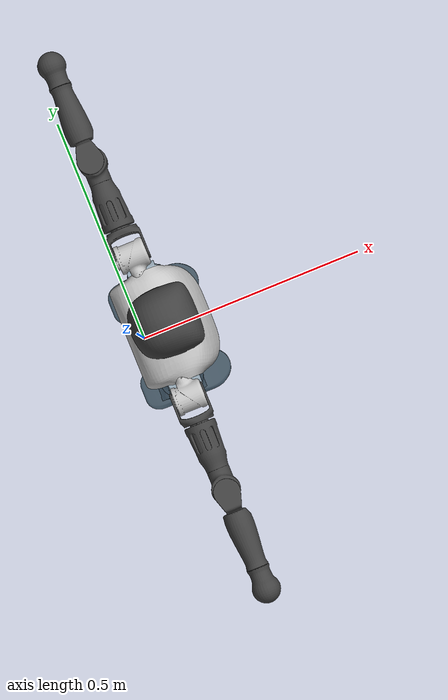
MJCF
<mujoco model="T1">
  <compiler angle="radian" assetdir="assets" balanceinertia="true" inertiafromgeom="false"/>

  <option timestep="0.005" density="1.2" viscosity="2e-05"/>

  <size nkey="1"/>

  <visual>
    <quality shadowsize="8192"/>
    <map shadowclip="0.5"/>
  </visual>

  <default>
    <default class="/">
      <joint armature="0.01" damping="0.01" frictionloss="0.1"/>
      <geom contype="0" conaffinity="0" group="1" solref="-1000 -80"/>
      <site size="0.01 0.005 0.005" group="5"/>
      <general forcelimited="true" biastype="affine" gainprm="25" biasprm="0 -25 -0.6"/>
      <default class="t1">
        <geom rgba="0.25 0.25 0.25 1"/>
        <default class="visual">
          <geom type="mesh" group="2"/>
        </default>
        <default class="collision">
          <geom group="3"/>
        </default>
        <default class="foot">
          <geom size="0.1115 0.05 0.015" type="box" condim="6" group="4" priority="1" solimp="0.015 1 0.015"/>
        </default>
        <default class="reward_collision_sphere">
          <geom group="5" rgba="1 0 0 1"/>
        </default>
      </default>
    </default>
  </default>

  <asset>
    <texture type="skybox" colorspace="auto" name="//unnamed_texture_0" builtin="gradient" rgb1="0.95 0.95 0.95" rgb2="0.95 0.95 0.95" width="100" height="600"/>
    <texture type="2d" colorspace="auto" name="texplane" builtin="checker" rgb1="0.345 0.575 0.748" rgb2="0.345 0.575 0.748" markrgb="1 1 1" width="512" height="512"/>
    <material name="MatPlane" class="/" texture="texplane" texuniform="true" texrepeat="2 2" specular="0.9"/>
    <mesh name="Trunk" class="/" file="Trunk.stl"/>
    <mesh name="H1" class="/" file="H1.stl"/>
    <mesh name="H2" class="/" file="H2.stl"/>
    <mesh name="AL1" class="/" file="AL1.stl"/>
    <mesh name="AL2" class="/" file="AL2.stl"/>
    <mesh name="AL3" class="/" file="AL3.stl"/>
    <mesh name="left_hand_link" class="/" file="left_hand_link.stl"/>
    <mesh name="AR1" class="/" file="AR1.stl"/>
    <mesh name="AR2" class="/" file="AR2.stl"/>
    <mesh name="AR3" class="/" file="AR3.stl"/>
    <mesh name="right_hand_link" class="/" file="right_hand_link.stl"/>
    <mesh name="Waist" class="/" file="Waist.stl"/>
    <mesh name="Hip_Pitch_Left" class="/" file="Hip_Pitch_Left.stl"/>
    <mesh name="Hip_Roll_Left" class="/" file="Hip_Roll_Left.stl"/>
    <mesh name="Hip_Yaw_Left" class="/" file="Hip_Yaw_Left.stl"/>
    <mesh name="Shank_Left" class="/" file="Shank_Left.stl"/>
    <mesh name="Ankle_Cross_Left" class="/" file="Ankle_Cross_Left.stl"/>
    <mesh name="left_foot_link" class="/" file="left_foot_link.stl"/>
    <mesh name="Hip_Pitch_Right" class="/" file="Hip_Pitch_Right.stl"/>
    <mesh name="Hip_Roll_Right" class="/" file="Hip_Roll_Right.stl"/>
    <mesh name="Hip_Yaw_Right" class="/" file="Hip_Yaw_Right.stl"/>
    <mesh name="Shank_Right" class="/" file="Shank_Right.stl"/>
    <mesh name="Ankle_Cross_Right" class="/" file="Ankle_Cross_Right.stl"/>
    <mesh name="right_foot_link" class="/" file="right_foot_link.stl"/>
  </asset>

  <worldbody>
    <geom name="floor" class="/" size="100 100 0.125" type="plane" group="0" material="MatPlane"/>
    <light name="toplight_shadow" class="/" pos="0 0 5" dir="0.0990148 0.0990148 -0.990148" type="directional" ambient="0.04 0.04 0.04" diffuse="0.55 0.55 0.55" specular="0.12 0.12 0.12"/>
    <light name="toplight_fill" class="/" pos="0 0 5" dir="0.0990148 0.0990148 -0.990148" type="directional" castshadow="false" ambient="0.04 0.04 0.04" diffuse="0.3 0.3 0.3" specular="0.08 0.08 0.08"/>
    <body name="trunk" childclass="t1" pos="-0.000368542 0.00265666 -0.00232567" quat="1 -0.000846261 -0.000508121 1.01091e-05">
      <inertial pos="0.0407666 -0.000392418 0.112576" quat="0.999955 0.000412779 -0.00939829 0.00122462" mass="9.87196" diaginertia="0.0208614 0.0881571 0.076838"/>
      <joint name="//unnamed_joint_0" type="free" armature="0" damping="0" frictionloss="0"/>
      <geom name="//unnamed_geom_1" class="visual" rgba="0.76 0.76 0.76 1" mesh="Trunk"/>
      <geom name="//unnamed_geom_2" class="collision" size="0.0714781 0.0953042 0.142956" pos="0.0451105 0 0.129475" type="box"/>
      <geom name="//unnamed_geom_3" class="reward_collision_sphere" size="0.1096" pos="0.0451105 0 0.107895"/>
      <geom name="//unnamed_geom_4" class="reward_collision_sphere" size="0.0142956" pos="0.0451105 0.0874079 0"/>
      <geom name="//unnamed_geom_5" class="reward_collision_sphere" size="0.0142956" pos="0.0451105 -0.0874079 0"/>
      <geom name="//unnamed_geom_6" class="reward_collision_sphere" size="0.0142956" pos="0.0451105 0.110031 0.194212"/>
      <geom name="//unnamed_geom_7" class="reward_collision_sphere" size="0.0142956" pos="0.0451105 -0.110031 0.194212"/>
      <site name="imu" pos="-0.0119456 0.00521439 -0.00268312" size="0.00953042"/>
      <camera name="track" pos="0 -2.05666 0" quat="0.707107 0.707107 0 0" mode="trackcom"/>
      <camera name="ego_camera" pos="0.0917247 0 0.453161" quat="-0.5 -0.5 0.5 0.5"/>
      <body name="H1" pos="0.0484978 -0.000545654 0.263962" quat="0.999999 -7.98446e-05 -0.000730102 0.00109568">
        <inertial pos="0.00137618 0.000212038 0.0619436" quat="0.765566 -0.0110286 0.00226425 0.643259" mass="0.393336" diaginertia="5.91177e-05 0.000263186 0.000209784"/>
        <joint name="AAHead_yaw" pos="0 0 0" axis="-0.00293382 0.00296895 0.999991" stiffness="0.000216254" range="-1.6053 1.56536" armature="0.00908053" damping="0" frictionloss="0.101354"/>
        <geom name="//unnamed_geom_8" class="visual" mesh="H1"/>
        <body name="H2" pos="-0.00143843 -1.40381e-05 0.0687244" quat="0.999999 -0.00106772 -1.19404e-05 -0.000280146">
          <inertial pos="0.00475195 0.000142285 0.105949" quat="0.988419 0.106183 -0.0750303 -0.0782496" mass="0.535535" diaginertia="0.000475047 0.00214902 0.00254227"/>
          <joint name="Head_pitch" pos="0 0 0" axis="-0.0118111 -0.999921 0.00435" range="-1.27939 0.3965" armature="0.0108031" damping="0.0172472" frictionloss="0.105532"/>
          <geom name="//unnamed_geom_9" class="visual" mesh="H2"/>
          <geom name="//unnamed_geom_10" class="collision" size="0.0762433" pos="0.00751842 0 0.118685"/>
          <geom name="//unnamed_geom_11" class="reward_collision_sphere" size="0.0857737" pos="0.0150368 0 0.107895"/>
        </body>
      </body>
      <body name="AL1" pos="0.0461445 0.11228 0.239052" quat="1 -4.21723e-05 0.000514135 0.000634549">
        <inertial pos="-0.00264727 0.0443855 -0.0022354" quat="0.498294 0.487595 -0.511626 0.502189" mass="0.444143" diaginertia="0.000319063 0.00147077 0.000419808"/>
        <joint name="Left_Shoulder_Pitch" pos="0 0 0" axis="0.00204849 0.999995 -0.00246096" range="-3.29624 1.21656" armature="0.00933712" damping="0.0211155" frictionloss="0.0882807"/>
        <geom name="//unnamed_geom_12" class="visual" rgba="0.76 0.76 0.76 1" mesh="AL1"/>
        <body name="AL2" pos="-0.000741321 0.0498085 -0.00238118" quat="0.999999 0.00108299 -0.000498498 0.000344803">
          <inertial pos="0.00179864 0.0387263 -0.00277411" quat="0.489772 0.512479 -0.492303 0.5051" mass="0.144207" diaginertia="9.67978e-05 0.000386445 0.000259825"/>
          <joint name="Left_Shoulder_Roll" pos="0 0 0" axis="-0.999954 -0.00137748 -0.00947887" range="-1.56099 1.74317" armature="0.00901453" damping="0.00320244" frictionloss="0.0841094"/>
          <geom name="//unnamed_geom_13" class="visual" mesh="AL2"/>
          <body name="AL3" pos="-0.00173214 0.0602793 0.000506091" quat="1 -0.000112422 0.000312079 0.000624868">
            <inertial pos="0.000122514 0.0877974 0.00251386" quat="0.706407 0.707805 -0.000188134 0.000117956" mass="0.89264" diaginertia="0.00317387 0.0149488 0.000886813"/>
            <joint name="Left_Elbow_Pitch" pos="0 0 0" axis="-0.0127542 -0.999918 0.00107601" stiffness="0.000233826" range="-2.28773 2.27947" armature="0.00940265" damping="0.00436064" frictionloss="0.102632"/>
            <geom name="//unnamed_geom_14" class="visual" mesh="AL3"/>
            <geom name="//unnamed_geom_15" class="collision" size="0.0285912 0.0714781" pos="0 0.0514164 0" quat="0.707105 0.707108 0 0" type="cylinder"/>
            <geom name="//unnamed_geom_16" class="reward_collision_sphere" size="0.0343095"/>
            <body name="left_hand_link" pos="-0.00235716 0.149389 0.0019964" quat="1 -0.000496197 -0.000112252 0.000124201">
              <inertial pos="-8.94963e-05 0.114532 0.0034252" quat="0.708421 0.70579 3.97288e-06 -0.000747" mass="0.284601" diaginertia="0.00195543 0.00991305 0.000322018"/>
              <joint name="Left_Elbow_Yaw" pos="0 0 0" axis="0.00555545 -0.0131937 0.999898" range="-2.43468 -0.00186235" armature="0.00899868" damping="0.00960413" frictionloss="0.107755"/>
              <geom name="//unnamed_geom_17" class="visual" mesh="left_hand_link"/>
              <geom name="//unnamed_geom_18" class="collision" size="0.0285912 0.0833911" pos="0 0.133683 0" quat="0.707105 0.707108 0 0" type="cylinder"/>
              <geom name="//unnamed_geom_19" class="reward_collision_sphere" size="0.0476521"/>
              <geom name="//unnamed_geom_20" class="reward_collision_sphere" size="0.0333565" pos="0 0.113116 0"/>
              <geom name="//unnamed_geom_21" class="reward_collision_sphere" size="0.0333565" pos="0 0.221091 0"/>
            </body>
          </body>
        </body>
      </body>
      <body name="AR1" pos="0.0458873 -0.110519 0.239337" quat="0.999999 -0.000604272 7.74262e-05 -0.000859481">
        <inertial pos="0.000366542 -0.0483578 -0.000230346" quat="0.500758 0.497457 -0.511247 0.490311" mass="0.454091" diaginertia="0.000312855 0.00147753 0.000419966"/>
        <joint name="Right_Shoulder_Pitch" pos="0 0 0" axis="-0.00525354 -0.999984 -0.0020783" range="-1.22399 3.36198" armature="0.00972291" damping="0" frictionloss="0.0901536"/>
        <geom name="//unnamed_geom_22" class="visual" rgba="0.76 0.76 0.76 1" mesh="AR1"/>
        <body name="AR2" pos="-0.00128506 -0.0467512 0.00190507" quat="0.999999 -0.000803263 -0.000478451 0.00106013">
          <inertial pos="0.00132138 -0.0392458 0.00315911" quat="0.511805 0.487746 -0.51183 0.488046" mass="0.133899" diaginertia="9.87481e-05 0.000402057 0.000249717"/>
          <joint name="Right_Shoulder_Roll" pos="0 0 0" axis="-0.999883 -0.00645439 -0.0138991" stiffness="0.00314375" range="-1.73563 1.5825" armature="0.00971588" damping="0.0174875" frictionloss="0.108096"/>
          <geom name="//unnamed_geom_23" class="visual" mesh="AR2"/>
          <body name="AR3" pos="-0.000244456 -0.0593755 -0.000878477" quat="1 -4.49588e-05 6.3309e-05 -5.07793e-05">
            <inertial pos="-0.00238591 -0.0877977 -0.000250864" quat="0.715006 0.699056 -0.000629606 -0.00930257" mass="0.895898" diaginertia="0.00295686 0.0140189 0.000908444"/>
            <joint name="Right_Elbow_Pitch" pos="0 0 0" axis="0.00255017 0.999944 0.0103067" range="-2.26047 2.22189" armature="0.00805642" damping="0.00563262" frictionloss="0.100257"/>
            <geom name="//unnamed_geom_24" class="visual" mesh="AR3"/>
            <geom name="//unnamed_geom_25" class="collision" size="0.0285912 0.0714781" pos="0 -0.0514164 0" quat="0.707105 0.707108 0 0" type="cylinder"/>
            <geom name="//unnamed_geom_26" class="reward_collision_sphere" size="0.0343095"/>
            <body name="right_hand_link" pos="-8.06778e-05 -0.151821 0.00234776" quat="1 -3.14975e-06 4.15122e-06 -2.24915e-05">
              <inertial pos="-0.00280704 -0.109658 0.000465772" quat="0.70567 0.708538 0.001887 0.0010046" mass="0.276011" diaginertia="0.00193943 0.00897014 0.000314156"/>
              <joint name="Right_Elbow_Yaw" pos="0 0 0" axis="-0.000166142 -0.000468192 1" range="0.0194615 2.44091" armature="0.00917307" damping="0.0015179" frictionloss="0.0915273"/>
              <geom name="//unnamed_geom_27" class="visual" mesh="right_hand_link"/>
              <geom name="//unnamed_geom_28" class="collision" size="0.0285912 0.0833911" pos="0 -0.133683 0" quat="0.707105 0.707108 0 0" type="cylinder"/>
              <geom name="//unnamed_geom_29" class="reward_collision_sphere" size="0.0476521"/>
              <geom name="//unnamed_geom_30" class="reward_collision_sphere" size="0.0333565" pos="0 -0.113116 0"/>
              <geom name="//unnamed_geom_31" class="reward_collision_sphere" size="0.0333565" pos="0 -0.221091 0"/>
            </body>
          </body>
        </body>
      </body>
      <body name="Waist" pos="0.0491309 0.000380506 -0.121851" quat="1 8.8686e-05 -7.78079e-05 -0.000113405">
        <inertial pos="0.00448326 -0.000502342 0.00951388" quat="0.983504 0.000591158 -0.180867 0.00260639" mass="2.21575" diaginertia="0.0012399 0.00624181 0.0066742"/>
        <joint name="Waist" pos="0 0 0" axis="0.0013548 0.000412606 0.999999" range="-1.62626 1.61383" armature="0.00961326" damping="0" frictionloss="0.0947892"/>
        <geom name="//unnamed_geom_32" class="visual" mesh="Waist"/>
        <body name="Hip_Pitch_Left" pos="0.000351109 0.111045 0.00271132" quat="1 -0.000355188 0.000601997 -0.000113264">
          <inertial pos="-0.00157397 -0.00754469 -0.0216603" quat="0.975153 0.221086 0.0139165 0.00182365" mass="0.907835" diaginertia="0.000446103 0.00165909 0.0018068"/>
          <joint name="Left_Hip_Pitch" pos="0 0 0" axis="-0.00205863 0.999962 -0.00852842" range="-1.74305 1.57464" armature="0.00956792" damping="0" frictionloss="0.0822509"/>
          <geom name="//unnamed_geom_33" class="visual" rgba="0.76 0.76 0.76 1" mesh="Hip_Pitch_Left"/>
          <body name="Hip_Roll_Left" pos="0.00326655 0.000782825 -0.0203782" quat="1 3.78467e-05 4.42561e-05 1.61719e-05">
            <inertial pos="0.00141296 0.0008429 -0.057358" quat="0.711843 -0.00557434 -0.000446795 0.702317" mass="0.349051" diaginertia="0.000436938 0.00186076 0.000779962"/>
            <joint name="Left_Hip_Roll" pos="0 0 0" axis="-0.999999 0.000423608 -0.00146263" range="-1.51136 0.201791" armature="0.00969268" damping="0.0234538" frictionloss="0.0820494"/>
            <geom name="//unnamed_geom_34" class="visual" mesh="Hip_Roll_Left"/>
            <geom name="//unnamed_geom_35" class="reward_collision_sphere" size="0.0524173"/>
            <body name="Hip_Yaw_Left" pos="-0.00122707 -0.0011155 -0.0868486" quat="1 8.93511e-06 9.84306e-06 -1.59997e-05">
              <inertial pos="-0.00509879 -0.000249771 -0.0989839" quat="0.699766 -0.0335819 -0.0330477 0.712816" mass="1.81918" diaginertia="0.00633854 0.0294276 0.00383255"/>
              <joint name="Left_Hip_Yaw" pos="0 0 0" axis="-0.00188343 0.0112498 -0.999935" range="-1.01606 1.0646" armature="0.00817752" damping="0" frictionloss="0.0826746"/>
              <geom name="//unnamed_geom_36" class="visual" mesh="Hip_Yaw_Left"/>
              <geom name="//unnamed_geom_37" class="collision" size="0.0476521 0.0762433" type="cylinder"/>
              <body name="Shank_Left" pos="-0.0111982 0.00245518 -0.142492" quat="0.999999 2.54923e-05 -4.6451e-05 -0.00107723">
                <inertial pos="-0.002403 -0.00134107 -0.135484" quat="0.996651 -0.00190167 -0.0245547 0.0779801" mass="1.52756" diaginertia="0.00884487 0.0411388 0.0027711"/>
                <joint name="Left_Knee_Pitch" pos="0 0 0" axis="0.016619 0.999853 0.00415454" stiffness="0.00135225" range="-0.00355573 2.34169" armature="0.0108465" damping="0.0100693" frictionloss="0.0833831"/>
                <geom name="//unnamed_geom_38" class="visual" mesh="Shank_Left"/>
                <geom name="//unnamed_geom_39" class="collision" size="0.0476521 0.0714781" pos="0 0 -0.129475" type="cylinder"/>
                <geom name="//unnamed_geom_40" class="reward_collision_sphere" size="0.0619477"/>
                <body name="Ankle_Cross_Left" pos="-0.00230028 -0.00137894 -0.301893" quat="1 -8.30851e-05 -8.11329e-05 0.000161365">
                  <inertial pos="-0.00369073 0.000794334 -0.00916824" quat="0.452015 0.54885 0.545192 0.444085" mass="0.0641635" diaginertia="6.99746e-06 3.01155e-05 1.67687e-05"/>
                  <joint name="Left_Ankle_Pitch" pos="0 0 0" axis="-0.00297125 0.999952 0.00928613" stiffness="0.000551063" range="-0.859842 0.295381" armature="0.00966488" damping="0.0153878" frictionloss="0.0930898"/>
                  <geom name="//unnamed_geom_41" class="visual" mesh="Ankle_Cross_Left"/>
                  <body name="left_foot_link" pos="0.00232999 -0.000329801 -0.0127522" quat="0.999999 0.00106268 0.000337339 -0.000409708">
                    <inertial pos="-9.58901e-05 0.000143273 -0.00796753" quat="0.000507113 0.620804 -7.73524e-05 0.783965" mass="0.566705" diaginertia="0.000618123 0.00273707 0.00307099"/>
                    <joint name="Left_Ankle_Roll" pos="0 0 0" axis="-0.99988 -0.010299 0.0115644" range="-0.498701 0.475132" armature="0.00952888" damping="0.0191163" frictionloss="0.0955917"/>
                    <geom name="//unnamed_geom_42" class="visual" mesh="left_foot_link"/>
                    <geom name="left_foot" class="foot" size="0.114614 0.0515322 0.0157228" pos="0.00751842 0 -0.0161843"/>
                    <geom name="//unnamed_geom_44" class="reward_collision_sphere" size="0.0495582" pos="0.00751842 0 -0.0161843"/>
                    <geom name="//unnamed_geom_45" class="reward_collision_sphere" size="0.0285912" pos="0.071425 -0.0236516 -0.0161843"/>
                    <geom name="//unnamed_geom_46" class="reward_collision_sphere" size="0.0285912" pos="-0.0526289 -0.0236516 -0.0161843"/>
                    <site name="left_foot" class="foot" pos="0.00751842 0 -0.0161843" size="0.00953042"/>
                  </body>
                </body>
              </body>
            </body>
          </body>
        </body>
        <body name="Hip_Pitch_Right" pos="-0.0037306 -0.108503 0.00250591" quat="0.999999 8.91185e-06 -0.000691835 -0.000784528">
          <inertial pos="-0.000348614 0.00580855 -0.0195377" quat="0.974147 -0.224841 0.0207477 -0.00735014" mass="0.883377" diaginertia="0.00042829 0.00168912 0.00187766"/>
          <joint name="Right_Hip_Pitch" pos="0 0 0" axis="-0.00311692 -0.999985 -0.00441696" range="-1.51886 1.74532" armature="0.00965976" damping="0.0206604" frictionloss="0.105735"/>
          <geom name="//unnamed_geom_47" class="visual" rgba="0.76 0.76 0.76 1" mesh="Hip_Pitch_Right"/>
          <body name="Hip_Roll_Right" pos="-0.00293784 0.00156367 -0.018701" quat="1 -3.41682e-05 2.57446e-05 -7.4269e-05">
            <inertial pos="0.000845481 -0.00038131 -0.0559478" quat="0.706887 -0.00503027 -0.00602264 0.707283" mass="0.333309" diaginertia="0.000410734 0.00177116 0.000760497"/>
            <joint name="Right_Hip_Roll" pos="0 0 0" axis="-0.999873 -0.0132112 -0.00886808" range="-0.146778 1.54564" armature="0.00954458" damping="0" frictionloss="0.108565"/>
            <geom name="//unnamed_geom_48" class="visual" mesh="Hip_Roll_Right"/>
            <geom name="//unnamed_geom_49" class="reward_collision_sphere" size="0.0524173"/>
            <body name="Hip_Yaw_Right" pos="0.00239457 -0.000744015 -0.085936" quat="1 -0.000168203 -0.000144097 0.000101216">
              <inertial pos="-0.00751803 0.00155859 -0.0971086" quat="0.714455 -0.0315486 -0.0343493 0.698125" mass="1.81118" diaginertia="0.00623915 0.0286847 0.0036441"/>
              <joint name="Right_Hip_Yaw" pos="0 0 0" axis="-0.00915256 -0.006488 -0.999937" range="-1.01153 0.999006" armature="0.00937761" damping="0.0206746" frictionloss="0.0955041"/>
              <geom name="//unnamed_geom_50" class="visual" mesh="Hip_Yaw_Right"/>
              <geom name="//unnamed_geom_51" class="collision" size="0.0476521 0.0762433" type="cylinder"/>
              <body name="Shank_Right" pos="-0.00947767 0.00100952 -0.142669" quat="1 -6.68629e-06 4.26163e-06 -4.99803e-06">
                <inertial pos="-0.00609436 0.000632437 -0.135175" quat="0.999404 -0.0097347 -0.0208667 -0.025703" mass="1.55839" diaginertia="0.00826943 0.0404626 0.00277591"/>
                <joint name="Right_Knee_Pitch" pos="0 0 0" axis="0.00772153 -0.999947 0.00685044" range="-2.33076 -0.0537362" armature="0.00972706" damping="0.00998511" frictionloss="0.0822014"/>
                <geom name="//unnamed_geom_52" class="visual" mesh="Shank_Right"/>
                <geom name="//unnamed_geom_53" class="collision" size="0.0476521 0.0714781" pos="0 0 -0.129475" type="cylinder"/>
                <geom name="//unnamed_geom_54" class="reward_collision_sphere" size="0.0619477"/>
                <body name="Ankle_Cross_Right" pos="-0.00202255 -0.00259412 -0.30511" quat="1 0.000322852 -0.000209983 -0.000194834">
                  <inertial pos="-0.00217937 -0.00192201 -0.00757877" quat="0.441249 0.545289 0.550226 0.453002" mass="0.0611227" diaginertia="6.99465e-06 2.98115e-05 1.64847e-05"/>
                  <joint name="Right_Ankle_Pitch" pos="0 0 0" axis="0.00278428 -0.999996 -0.000173764" range="-0.318883 0.921127" armature="0.0100106" damping="0.0100681" frictionloss="0.0965871"/>
                  <geom name="//unnamed_geom_55" class="visual" mesh="Ankle_Cross_Right"/>
                  <body name="right_foot_link" pos="0.000343148 -0.000847041 -0.0110311" quat="1 -7.50723e-06 -2.13246e-06 -2.06746e-06">
                    <inertial pos="-0.000593151 -0.00140853 -0.00780596" quat="0.00323387 0.620633 0.00348468 0.784087" mass="0.600258" diaginertia="0.000645187 0.0026574 0.0031942"/>
                    <joint name="Right_Ankle_Roll" pos="0 0 0" axis="-0.999998 0.000245686 0.00180872" stiffness="4.4099e-05" range="-0.44163 0.436699" armature="0.008919" damping="0" frictionloss="0.103038"/>
                    <geom name="//unnamed_geom_56" class="visual" mesh="right_foot_link"/>
                    <geom name="right_foot" class="foot" size="0.101495 0.0429175 0.0153352" pos="0.00751842 0 -0.0161843"/>
                    <geom name="//unnamed_geom_58" class="reward_collision_sphere" size="0.0381217"/>
                    <geom name="//unnamed_geom_59" class="reward_collision_sphere" size="0.0285912" pos="0.00751842 0 -0.0161843"/>
                    <geom name="//unnamed_geom_60" class="reward_collision_sphere" size="0.0285912" pos="0.071425 0.0236516 -0.0161843"/>
                    <geom name="//unnamed_geom_61" class="reward_collision_sphere" size="0.0285912" pos="-0.0526289 0.0236516 -0.0161843"/>
                    <site name="right_foot" class="foot" pos="0.00751842 0 -0.0161843" size="0.00953042"/>
                  </body>
                </body>
              </body>
            </body>
          </body>
        </body>
      </body>
    </body>
  </worldbody>

  <contact>
    <pair class="/" geom1="floor" geom2="left_foot" name="//unnamed_contact_0"/>
    <pair class="/" geom1="floor" geom2="right_foot" name="//unnamed_contact_1"/>
  </contact>

  <actuator>
    <general name="AAHead_yaw" class="/" joint="AAHead_yaw" forcerange="-6.76201 6.76201" gainprm="25.5589" biasprm="0 -25.5589 -0.56382"/>
    <general name="Head_pitch" class="/" joint="Head_pitch" forcerange="-7.12375 7.12375" gainprm="25.5589" biasprm="0 -25.5589 -0.56382"/>
    <general name="Left_Shoulder_Pitch" class="/" joint="Left_Shoulder_Pitch" forcerange="-15.9596 15.9596" gainprm="25.5589" biasprm="0 -25.5589 -0.56382"/>
    <general name="Left_Shoulder_Roll" class="/" joint="Left_Shoulder_Roll" forcerange="-17.0607 17.0607" gainprm="25.5589" biasprm="0 -25.5589 -0.56382"/>
    <general name="Left_Elbow_Pitch" class="/" joint="Left_Elbow_Pitch" forcerange="-15.5149 15.5149" gainprm="25.5589" biasprm="0 -25.5589 -0.56382"/>
    <general name="Left_Elbow_Yaw" class="/" joint="Left_Elbow_Yaw" forcerange="-17.1903 17.1903" gainprm="25.5589" biasprm="0 -25.5589 -0.56382"/>
    <general name="Right_Shoulder_Pitch" class="/" joint="Right_Shoulder_Pitch" forcerange="-16.9781 16.9781" gainprm="25.5589" biasprm="0 -25.5589 -0.56382"/>
    <general name="Right_Shoulder_Roll" class="/" joint="Right_Shoulder_Roll" forcerange="-18.7733 18.7733" gainprm="25.5589" biasprm="0 -25.5589 -0.56382"/>
    <general name="Right_Elbow_Pitch" class="/" joint="Right_Elbow_Pitch" forcerange="-17.1824 17.1824" gainprm="25.5589" biasprm="0 -25.5589 -0.56382"/>
    <general name="Right_Elbow_Yaw" class="/" joint="Right_Elbow_Yaw" forcerange="-16.6932 16.6932" gainprm="25.5589" biasprm="0 -25.5589 -0.56382"/>
    <general name="Waist" class="/" joint="Waist" forcerange="-28.5779 28.5779" gainprm="25.5589" biasprm="0 -25.5589 -0.56382"/>
    <general name="Left_Hip_Pitch" class="/" joint="Left_Hip_Pitch" forcerange="-43.14 43.14" gainprm="25.5589" biasprm="0 -25.5589 -0.56382"/>
    <general name="Left_Hip_Roll" class="/" joint="Left_Hip_Roll" forcerange="-30.944 30.944" gainprm="25.5589" biasprm="0 -25.5589 -0.56382"/>
    <general name="Left_Hip_Yaw" class="/" joint="Left_Hip_Yaw" forcerange="-25.9304 25.9304" gainprm="25.5589" biasprm="0 -25.5589 -0.56382"/>
    <general name="Left_Knee_Pitch" class="/" joint="Left_Knee_Pitch" forcerange="-61.8165 61.8165" gainprm="25.5589" biasprm="0 -25.5589 -0.56382"/>
    <general name="Left_Ankle_Pitch" class="/" joint="Left_Ankle_Pitch" forcerange="-17.2655 17.2655" gainprm="25.5589" biasprm="0 -25.5589 -0.56382"/>
    <general name="Left_Ankle_Roll" class="/" joint="Left_Ankle_Roll" forcerange="-13.0687 13.0687" gainprm="25.5589" biasprm="0 -25.5589 -0.56382"/>
    <general name="Right_Hip_Pitch" class="/" joint="Right_Hip_Pitch" forcerange="-38.6741 38.6741" gainprm="25.5589" biasprm="0 -25.5589 -0.56382"/>
    <general name="Right_Hip_Roll" class="/" joint="Right_Hip_Roll" forcerange="-29.6072 29.6072" gainprm="25.5589" biasprm="0 -25.5589 -0.56382"/>
    <general name="Right_Hip_Yaw" class="/" joint="Right_Hip_Yaw" forcerange="-31.519 31.519" gainprm="25.5589" biasprm="0 -25.5589 -0.56382"/>
    <general name="Right_Knee_Pitch" class="/" joint="Right_Knee_Pitch" forcerange="-58.2758 58.2758" gainprm="25.5589" biasprm="0 -25.5589 -0.56382"/>
    <general name="Right_Ankle_Pitch" class="/" joint="Right_Ankle_Pitch" forcerange="-19.1332 19.1332" gainprm="25.5589" biasprm="0 -25.5589 -0.56382"/>
    <general name="Right_Ankle_Roll" class="/" joint="Right_Ankle_Roll" forcerange="-14.7325 14.7325" gainprm="25.5589" biasprm="0 -25.5589 -0.56382"/>
  </actuator>

  <sensor>
    <gyro site="imu" name="imu_angular_velocity"/>
    <velocimeter site="imu" name="imu_linear_velocity"/>
    <framelinvel objtype="site" objname="left_foot" name="left_foot_global_linear_velocity"/>
    <framelinvel objtype="site" objname="right_foot" name="right_foot_global_linear_velocity"/>
  </sensor>

  <keyframe>
    <key name="home" qpos="0 0 0.6385 1 0 0 0 0 0 0 1.4 0 -0.4 0 -1.4 0 0.4 0 -0.4 0 0 0.8 -0.4 0 0.4 0 0 -0.8 0.4 0"/>
  </keyframe>
</mujoco>
